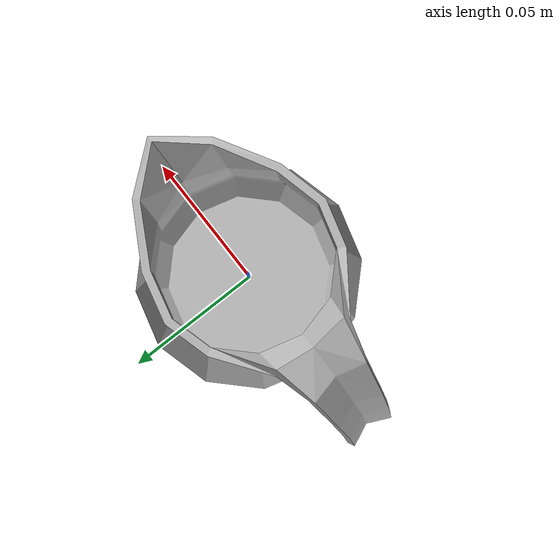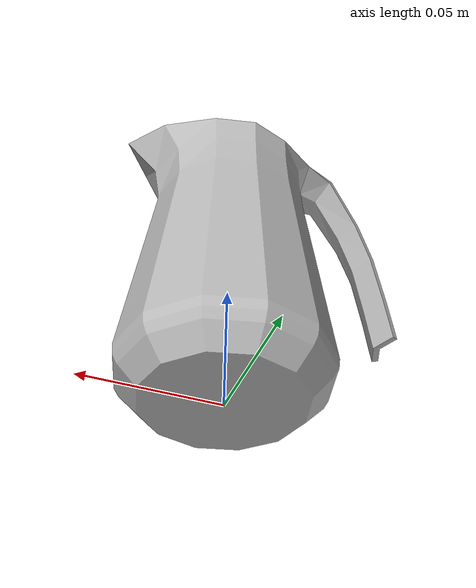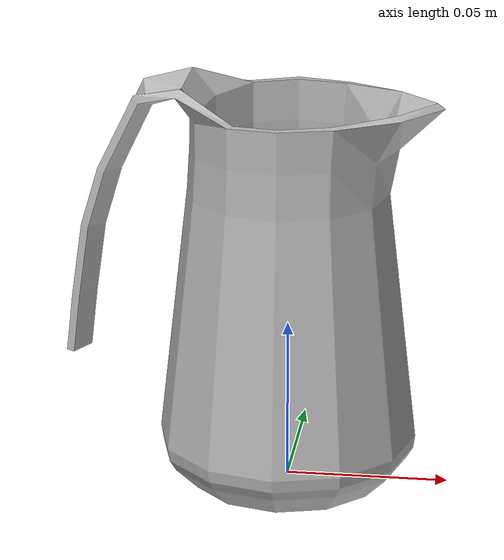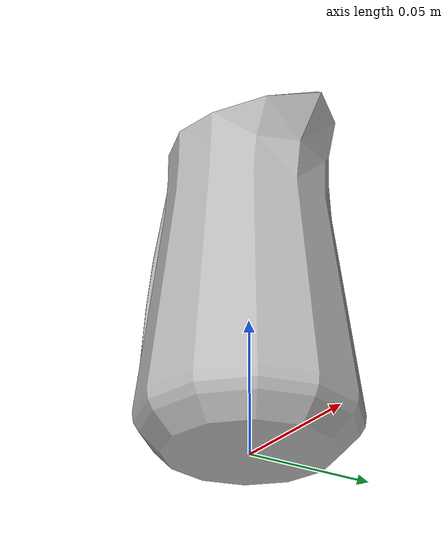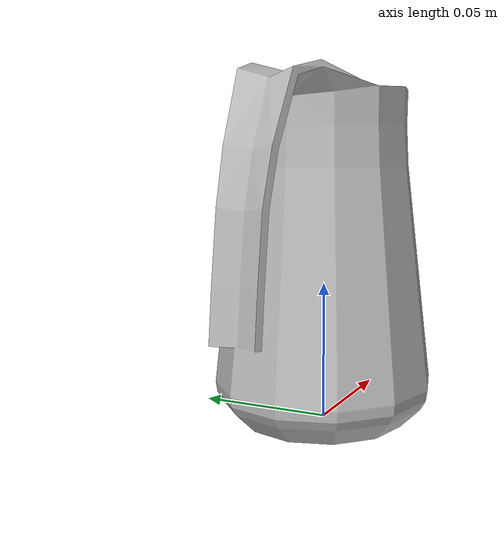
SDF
<?xml version='1.0'?>
<sdf version="1.4">
	<model name="milk_pot">
		<static>1</static>
		<link name="link">
			<visual name="mesh">
				<geometry>
					<mesh>
						<uri>model://meshes/milk_pot.dae</uri>
					</mesh>
				</geometry>
			</visual>
			<collision name="collider">
				<pose>0 0 0.06 0 0 0</pose>
				<geometry>
					<cylinder>
						<radius>0.04</radius>
						<length>0.12</length>
					</cylinder>
				</geometry>
			</collision>
		</link>
	</model>
</sdf>
